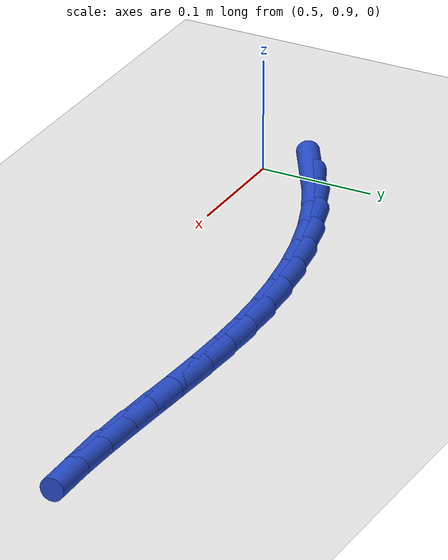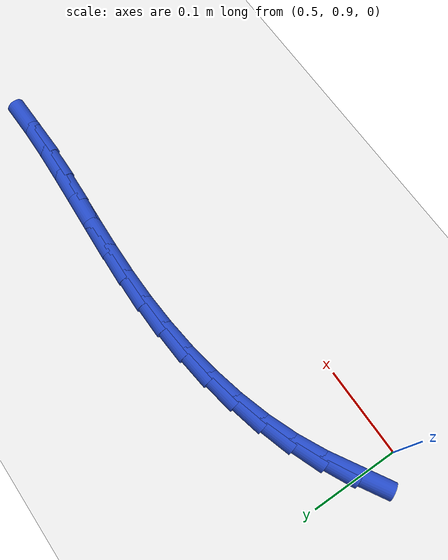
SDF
<sdf version="1.6">
 <world name="default">
  <model name="ground_plane">
   <static>1</static>
   <link name="link">
    <collision name="collision">
     <geometry><plane><normal>0 0 1</normal><size>100 100</size></plane></geometry>
     <surface><friction><ode><mu>100</mu><mu2>50</mu2></ode></friction></surface>
    </collision>
    <visual name="visual">
     <cast_shadows>0</cast_shadows>
     <geometry><plane><normal>0 0 1</normal><size>100 100</size></plane></geometry>
     <material>
      <script><uri>file://media/materials/scripts/gazebo.material</uri><name>Gazebo/WhiteGlow</name></script>
     </material>
    </visual>
   </link>
  </model>
  <model name="line">
   <link name="link_31">
    <pose>0.5051844714881066 0.9472947162586077 0.01 0 1.57 0.5358806291473722</pose>
    <collision name="collision">
     <geometry><cylinder><radius>0.01</radius><length>0.08</length></cylinder></geometry>
    </collision>
    <visual name="visual">
     <material>
      <script><name>Gazebo/Blue</name><uri>file://media/materials/scripts/gazebo.material</uri></script>
     </material>
     <geometry><cylinder><radius>0.01</radius><length>0.08</length></cylinder></geometry>
    </visual>
   </link>
   <link name="link_32">
    <pose>0.5349875291151076 0.9649930789847339 0.01 0 1.57 0.45457034131335616</pose>
    <collision name="collision">
     <geometry><cylinder><radius>0.01</radius><length>0.08</length></cylinder></geometry>
    </collision>
    <visual name="visual">
     <material>
      <script><name>Gazebo/Blue</name><uri>file://media/materials/scripts/gazebo.material</uri></script>
     </material>
     <geometry><cylinder><radius>0.01</radius><length>0.08</length></cylinder></geometry>
    </visual>
   </link>
   <link name="link_33">
    <pose>0.5662372657727757 0.9802649619090583 0.01 0 1.57 0.37138330588417057</pose>
    <collision name="collision">
     <geometry><cylinder><radius>0.01</radius><length>0.08</length></cylinder></geometry>
    </collision>
    <visual name="visual">
     <material>
      <script><name>Gazebo/Blue</name><uri>file://media/materials/scripts/gazebo.material</uri></script>
     </material>
     <geometry><cylinder><radius>0.01</radius><length>0.08</length></cylinder></geometry>
    </visual>
   </link>
   <link name="link_34">
    <pose>0.598929770820631 0.9929972353370461 0.01 0 1.57 0.2953534262869572</pose>
    <collision name="collision">
     <geometry><cylinder><radius>0.01</radius><length>0.08</length></cylinder></geometry>
    </collision>
    <visual name="visual">
     <material>
      <script><name>Gazebo/Blue</name><uri>file://media/materials/scripts/gazebo.material</uri></script>
     </material>
     <geometry><cylinder><radius>0.01</radius><length>0.08</length></cylinder></geometry>
    </visual>
   </link>
   <link name="link_35">
    <pose>0.6328137971839443 1.0033065290067344 0.01 0 1.57 0.2269750756102584</pose>
    <collision name="collision">
     <geometry><cylinder><radius>0.01</radius><length>0.08</length></cylinder></geometry>
    </collision>
    <visual name="visual">
     <material>
      <script><name>Gazebo/Blue</name><uri>file://media/materials/scripts/gazebo.material</uri></script>
     </material>
     <geometry><cylinder><radius>0.01</radius><length>0.08</length></cylinder></geometry>
    </visual>
   </link>
   <link name="link_36">
    <pose>0.6676037001206521 1.0113414258479847 0.01 0 1.57 0.16535183219515226</pose>
    <collision name="collision">
     <geometry><cylinder><radius>0.01</radius><length>0.08</length></cylinder></geometry>
    </collision>
    <visual name="visual">
     <material>
      <script><name>Gazebo/Blue</name><uri>file://media/materials/scripts/gazebo.material</uri></script>
     </material>
     <geometry><cylinder><radius>0.01</radius><length>0.08</length></cylinder></geometry>
    </visual>
   </link>
   <link name="link_37">
    <pose>0.7030138348886904 1.017250508790658 0.01 0 1.57 0.10955766288458205</pose>
    <collision name="collision">
     <geometry><cylinder><radius>0.01</radius><length>0.08</length></cylinder></geometry>
    </collision>
    <visual name="visual">
     <material>
      <script><name>Gazebo/Blue</name><uri>file://media/materials/scripts/gazebo.material</uri></script>
     </material>
     <geometry><cylinder><radius>0.01</radius><length>0.08</length></cylinder></geometry>
    </visual>
   </link>
   <link name="link_38">
    <pose>0.7387585567459962 1.0211823607646158 0.01 0 1.57 0.058691627503041396</pose>
    <collision name="collision">
     <geometry><cylinder><radius>0.01</radius><length>0.08</length></cylinder></geometry>
    </collision>
    <visual name="visual">
     <material>
      <script><name>Gazebo/Blue</name><uri>file://media/materials/scripts/gazebo.material</uri></script>
     </material>
     <geometry><cylinder><radius>0.01</radius><length>0.08</length></cylinder></geometry>
    </visual>
   </link>
   <link name="link_39">
    <pose>0.7745522209505062 1.0232855646997197 0.01 0 1.57 0.012994231476737244</pose>
    <collision name="collision">
     <geometry><cylinder><radius>0.01</radius><length>0.08</length></cylinder></geometry>
    </collision>
    <visual name="visual">
     <material>
      <script><name>Gazebo/Blue</name><uri>file://media/materials/scripts/gazebo.material</uri></script>
     </material>
     <geometry><cylinder><radius>0.01</radius><length>0.08</length></cylinder></geometry>
    </visual>
   </link>
   <link name="link_40">
    <pose>0.8101576348989149 1.023748255732485 0.01 0 1.57 -0.022651811205012303</pose>
    <collision name="collision">
     <geometry><cylinder><radius>0.01</radius><length>0.08</length></cylinder></geometry>
    </collision>
    <visual name="visual">
     <material>
      <script><name>Gazebo/Blue</name><uri>file://media/materials/scripts/gazebo.material</uri></script>
     </material>
     <geometry><cylinder><radius>0.01</radius><length>0.08</length></cylinder></geometry>
    </visual>
   </link>
   <link name="link_41">
    <pose>0.8455672449415528 1.0229460267171429 0.01 0 1.57 -0.04634842842652508</pose>
    <collision name="collision">
     <geometry><cylinder><radius>0.01</radius><length>0.08</length></cylinder></geometry>
    </collision>
    <visual name="visual">
     <material>
      <script><name>Gazebo/Blue</name><uri>file://media/materials/scripts/gazebo.material</uri></script>
     </material>
     <geometry><cylinder><radius>0.01</radius><length>0.08</length></cylinder></geometry>
    </visual>
   </link>
   <link name="link_42">
    <pose>0.8808414614113669 1.0213099505249965 0.01 0 1.57 -0.05785824511243321</pose>
    <collision name="collision">
     <geometry><cylinder><radius>0.01</radius><length>0.08</length></cylinder></geometry>
    </collision>
    <visual name="visual">
     <material>
      <script><name>Gazebo/Blue</name><uri>file://media/materials/scripts/gazebo.material</uri></script>
     </material>
     <geometry><cylinder><radius>0.01</radius><length>0.08</length></cylinder></geometry>
    </visual>
   </link>
   <link name="link_43">
    <pose>0.9160407050120856 1.0192711084931732 0.01 0 1.57 -0.05708001010434795</pose>
    <collision name="collision">
     <geometry><cylinder><radius>0.01</radius><length>0.08</length></cylinder></geometry>
    </collision>
    <visual name="visual">
     <material>
      <script><name>Gazebo/Blue</name><uri>file://media/materials/scripts/gazebo.material</uri></script>
     </material>
     <geometry><cylinder><radius>0.01</radius><length>0.08</length></cylinder></geometry>
    </visual>
   </link>
   <link name="link_44">
    <pose>0.9512253964474364 1.0172605819587996 0.01 0 1.57 -0.043999544621473125</pose>
    <collision name="collision">
     <geometry><cylinder><radius>0.01</radius><length>0.08</length></cylinder></geometry>
    </collision>
    <visual name="visual">
     <material>
      <script><name>Gazebo/Blue</name><uri>file://media/materials/scripts/gazebo.material</uri></script>
     </material>
     <geometry><cylinder><radius>0.01</radius><length>0.08</length></cylinder></geometry>
    </visual>
   </link>
   <link name="link_45">
    <pose>0.986455956421148 1.015709452259003 0.01 0 1.57 -0.018693646590850137</pose>
    <collision name="collision">
     <geometry><cylinder><radius>0.01</radius><length>0.08</length></cylinder></geometry>
    </collision>
    <visual name="visual">
     <material>
      <script><name>Gazebo/Blue</name><uri>file://media/materials/scripts/gazebo.material</uri></script>
     </material>
     <geometry><cylinder><radius>0.01</radius><length>0.08</length></cylinder></geometry>
    </visual>
   </link>
   <link name="link_46">
    <pose>1.0217928056369476 1.0150488007309102 0.01 0 1.57 0.018613110099203824</pose>
    <collision name="collision">
     <geometry><cylinder><radius>0.01</radius><length>0.08</length></cylinder></geometry>
    </collision>
    <visual name="visual">
     <material>
      <script><name>Gazebo/Blue</name><uri>file://media/materials/scripts/gazebo.material</uri></script>
     </material>
     <geometry><cylinder><radius>0.01</radius><length>0.08</length></cylinder></geometry>
    </visual>
   </link>
  </model>
 </world>
</sdf>
